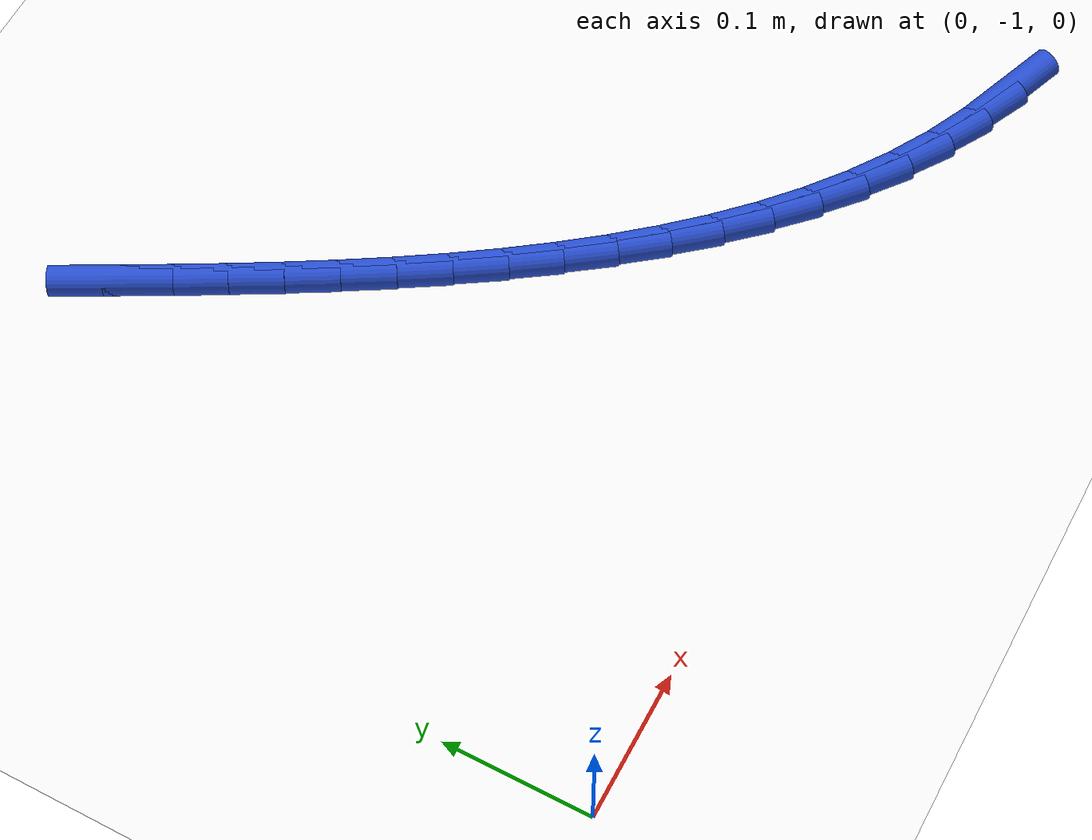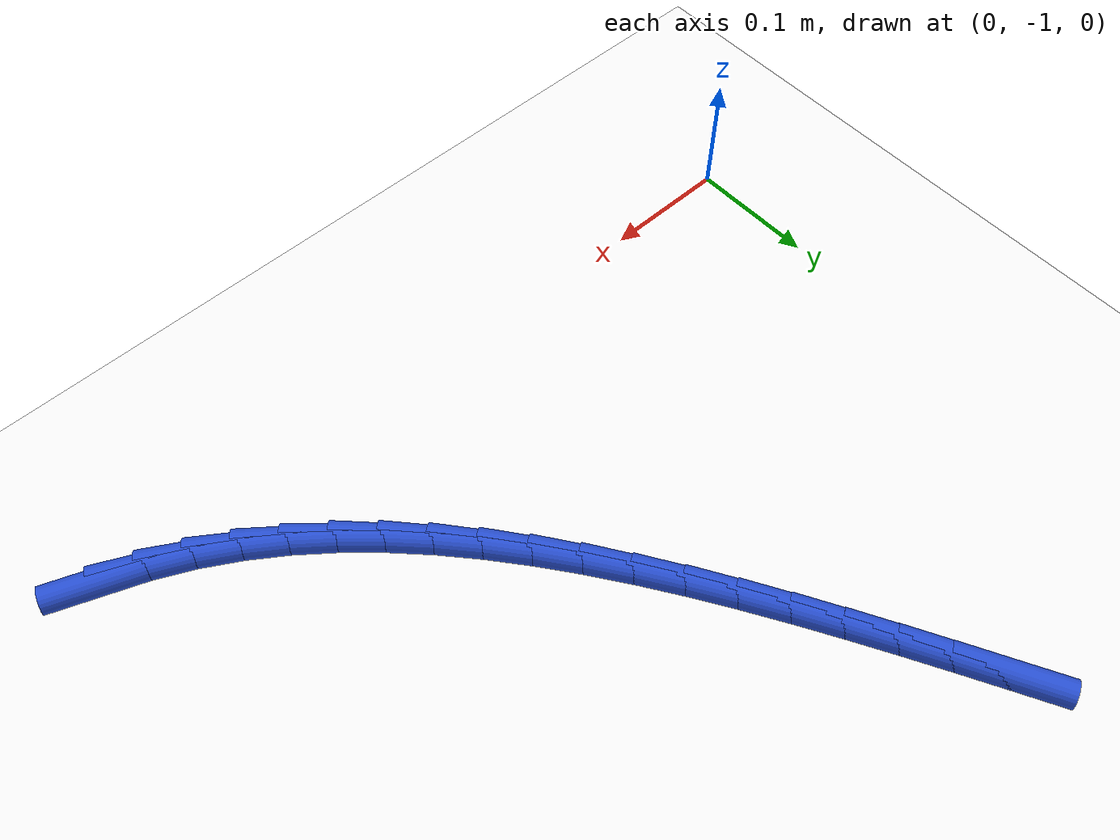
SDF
<sdf version="1.6">
 <world name="default">
  <model name="ground_plane">
   <static>1</static>
   <link name="link">
    <collision name="collision">
     <geometry><plane><normal>0 0 1</normal><size>100 100</size></plane></geometry>
     <surface><friction><ode><mu>100</mu><mu2>50</mu2></ode></friction></surface>
    </collision>
    <visual name="visual">
     <cast_shadows>0</cast_shadows>
     <geometry><plane><normal>0 0 1</normal><size>100 100</size></plane></geometry>
     <material>
      <script><uri>file://media/materials/scripts/gazebo.material</uri><name>Gazebo/WhiteGlow</name></script>
     </material>
    </visual>
   </link>
  </model>
  <model name="line">
   <link name="link_184">
    <pose>0.5693409244738493 -1.010287465968349 0.01 0 1.57 -0.36818998447042045</pose>
    <collision name="collision">
     <geometry><cylinder><radius>0.01</radius><length>0.08</length></cylinder></geometry>
    </collision>
    <visual name="visual">
     <material>
      <script><name>Gazebo/Blue</name><uri>file://media/materials/scripts/gazebo.material</uri></script>
     </material>
     <geometry><cylinder><radius>0.01</radius><length>0.08</length></cylinder></geometry>
    </visual>
   </link>
   <link name="link_185">
    <pose>0.539573678133154 -0.998803788916294 0.01 0 1.57 -0.4521419477609348</pose>
    <collision name="collision">
     <geometry><cylinder><radius>0.01</radius><length>0.08</length></cylinder></geometry>
    </collision>
    <visual name="visual">
     <material>
      <script><name>Gazebo/Blue</name><uri>file://media/materials/scripts/gazebo.material</uri></script>
     </material>
     <geometry><cylinder><radius>0.01</radius><length>0.08</length></cylinder></geometry>
    </visual>
   </link>
   <link name="link_186">
    <pose>0.5109879439334316 -0.9849197103812226 0.01 0 1.57 -0.5310793571287914</pose>
    <collision name="collision">
     <geometry><cylinder><radius>0.01</radius><length>0.08</length></cylinder></geometry>
    </collision>
    <visual name="visual">
     <material>
      <script><name>Gazebo/Blue</name><uri>file://media/materials/scripts/gazebo.material</uri></script>
     </material>
     <geometry><cylinder><radius>0.01</radius><length>0.08</length></cylinder></geometry>
    </visual>
   </link>
   <link name="link_187">
    <pose>0.48353162524478943 -0.9687927520599927 0.01 0 1.57 -0.6042604568738387</pose>
    <collision name="collision">
     <geometry><cylinder><radius>0.01</radius><length>0.08</length></cylinder></geometry>
    </collision>
    <visual name="visual">
     <material>
      <script><name>Gazebo/Blue</name><uri>file://media/materials/scripts/gazebo.material</uri></script>
     </material>
     <geometry><cylinder><radius>0.01</radius><length>0.08</length></cylinder></geometry>
    </visual>
   </link>
   <link name="link_188">
    <pose>0.4571526254373317 -0.9505804356494603 0.01 0 1.57 -0.6712954924127393</pose>
    <collision name="collision">
     <geometry><cylinder><radius>0.01</radius><length>0.08</length></cylinder></geometry>
    </collision>
    <visual name="visual">
     <material>
      <script><name>Gazebo/Blue</name><uri>file://media/materials/scripts/gazebo.material</uri></script>
     </material>
     <geometry><cylinder><radius>0.01</radius><length>0.08</length></cylinder></geometry>
    </visual>
   </link>
   <link name="link_189">
    <pose>0.4317988478811644 -0.9304402828464825 0.01 0 1.57 -0.7320867756161786</pose>
    <collision name="collision">
     <geometry><cylinder><radius>0.01</radius><length>0.08</length></cylinder></geometry>
    </collision>
    <visual name="visual">
     <material>
      <script><name>Gazebo/Blue</name><uri>file://media/materials/scripts/gazebo.material</uri></script>
     </material>
     <geometry><cylinder><radius>0.01</radius><length>0.08</length></cylinder></geometry>
    </visual>
   </link>
   <link name="link_190">
    <pose>0.40741819594639217 -0.9085298153479155 0.01 0 1.57 -0.7867526463591232</pose>
    <collision name="collision">
     <geometry><cylinder><radius>0.01</radius><length>0.08</length></cylinder></geometry>
    </collision>
    <visual name="visual">
     <material>
      <script><name>Gazebo/Blue</name><uri>file://media/materials/scripts/gazebo.material</uri></script>
     </material>
     <geometry><cylinder><radius>0.01</radius><length>0.08</length></cylinder></geometry>
    </visual>
   </link>
   <link name="link_191">
    <pose>0.38395857300312186 -0.8850065548506176 0.01 0 1.57 -0.8355532538327217</pose>
    <collision name="collision">
     <geometry><cylinder><radius>0.01</radius><length>0.08</length></cylinder></geometry>
    </collision>
    <visual name="visual">
     <material>
      <script><name>Gazebo/Blue</name><uri>file://media/materials/scripts/gazebo.material</uri></script>
     </material>
     <geometry><cylinder><radius>0.01</radius><length>0.08</length></cylinder></geometry>
    </visual>
   </link>
   <link name="link_192">
    <pose>0.3613678824214581 -0.8600280230514443 0.01 0 1.57 -0.8788280368900504</pose>
    <collision name="collision">
     <geometry><cylinder><radius>0.01</radius><length>0.08</length></cylinder></geometry>
    </collision>
    <visual name="visual">
     <material>
      <script><name>Gazebo/Blue</name><uri>file://media/materials/scripts/gazebo.material</uri></script>
     </material>
     <geometry><cylinder><radius>0.01</radius><length>0.08</length></cylinder></geometry>
    </visual>
   </link>
   <link name="link_193">
    <pose>0.33959402757150664 -0.8337517416472533 0.01 0 1.57 -0.9169481436805927</pose>
    <collision name="collision">
     <geometry><cylinder><radius>0.01</radius><length>0.08</length></cylinder></geometry>
    </collision>
    <visual name="visual">
     <material>
      <script><name>Gazebo/Blue</name><uri>file://media/materials/scripts/gazebo.material</uri></script>
     </material>
     <geometry><cylinder><radius>0.01</radius><length>0.08</length></cylinder></geometry>
    </visual>
   </link>
   <link name="link_194">
    <pose>0.3185849118233729 -0.8063352323349005 0.01 0 1.57 -0.9502829666348307</pose>
    <collision name="collision">
     <geometry><cylinder><radius>0.01</radius><length>0.08</length></cylinder></geometry>
    </collision>
    <visual name="visual">
     <material>
      <script><name>Gazebo/Blue</name><uri>file://media/materials/scripts/gazebo.material</uri></script>
     </material>
     <geometry><cylinder><radius>0.01</radius><length>0.08</length></cylinder></geometry>
    </visual>
   </link>
   <link name="link_195">
    <pose>0.2982884385471619 -0.7779360168112426 0.01 0 1.57 -0.9791781414793637</pose>
    <collision name="collision">
     <geometry><cylinder><radius>0.01</radius><length>0.08</length></cylinder></geometry>
    </collision>
    <visual name="visual">
     <material>
      <script><name>Gazebo/Blue</name><uri>file://media/materials/scripts/gazebo.material</uri></script>
     </material>
     <geometry><cylinder><radius>0.01</radius><length>0.08</length></cylinder></geometry>
    </visual>
   </link>
   <link name="link_196">
    <pose>0.27865251111298 -0.7487116167731372 0.01 0 1.57 -1.0039419581421312</pose>
    <collision name="collision">
     <geometry><cylinder><radius>0.01</radius><length>0.08</length></cylinder></geometry>
    </collision>
    <visual name="visual">
     <material>
      <script><name>Gazebo/Blue</name><uri>file://media/materials/scripts/gazebo.material</uri></script>
     </material>
     <geometry><cylinder><radius>0.01</radius><length>0.08</length></cylinder></geometry>
    </visual>
   </link>
   <link name="link_197">
    <pose>0.25962503289093236 -0.7188195539174412 0.01 0 1.57 -1.0248374370649012</pose>
    <collision name="collision">
     <geometry><cylinder><radius>0.01</radius><length>0.08</length></cylinder></geometry>
    </collision>
    <visual name="visual">
     <material>
      <script><name>Gazebo/Blue</name><uri>file://media/materials/scripts/gazebo.material</uri></script>
     </material>
     <geometry><cylinder><radius>0.01</radius><length>0.08</length></cylinder></geometry>
    </visual>
   </link>
   <link name="link_198">
    <pose>0.24115390725112432 -0.6884173499410111 0.01 0 1.57 -1.0420778693157458</pose>
    <collision name="collision">
     <geometry><cylinder><radius>0.01</radius><length>0.08</length></cylinder></geometry>
    </collision>
    <visual name="visual">
     <material>
      <script><name>Gazebo/Blue</name><uri>file://media/materials/scripts/gazebo.material</uri></script>
     </material>
     <geometry><cylinder><radius>0.01</radius><length>0.08</length></cylinder></geometry>
    </visual>
   </link>
   <link name="link_199">
    <pose>0.22318703756366104 -0.6576625265407028 0.01 0 1.57 -1.055824158852091</pose>
    <collision name="collision">
     <geometry><cylinder><radius>0.01</radius><length>0.08</length></cylinder></geometry>
    </collision>
    <visual name="visual">
     <material>
      <script><name>Gazebo/Blue</name><uri>file://media/materials/scripts/gazebo.material</uri></script>
     </material>
     <geometry><cylinder><radius>0.01</radius><length>0.08</length></cylinder></geometry>
    </visual>
   </link>
   <link name="link_200">
    <pose>0.2056723271986489 -0.6267126054133746 0.01 0 1.57 -1.0661827400891835</pose>
    <collision name="collision">
     <geometry><cylinder><radius>0.01</radius><length>0.08</length></cylinder></geometry>
    </collision>
    <visual name="visual">
     <material>
      <script><name>Gazebo/Blue</name><uri>file://media/materials/scripts/gazebo.material</uri></script>
     </material>
     <geometry><cylinder><radius>0.01</radius><length>0.08</length></cylinder></geometry>
    </visual>
   </link>
   <link name="link_201">
    <pose>0.18855767952619287 -0.5957251082558829 0.01 0 1.57 -1.0732031492409164</pose>
    <collision name="collision">
     <geometry><cylinder><radius>0.01</radius><length>0.08</length></cylinder></geometry>
    </collision>
    <visual name="visual">
     <material>
      <script><name>Gazebo/Blue</name><uri>file://media/materials/scripts/gazebo.material</uri></script>
     </material>
     <geometry><cylinder><radius>0.01</radius><length>0.08</length></cylinder></geometry>
    </visual>
   </link>
   <link name="link_202">
    <pose>0.17179099791639849 -0.564857556765084 0.01 0 1.57 -1.0768869561064465</pose>
    <collision name="collision">
     <geometry><cylinder><radius>0.01</radius><length>0.08</length></cylinder></geometry>
    </collision>
    <visual name="visual">
     <material>
      <script><name>Gazebo/Blue</name><uri>file://media/materials/scripts/gazebo.material</uri></script>
     </material>
     <geometry><cylinder><radius>0.01</radius><length>0.08</length></cylinder></geometry>
    </visual>
   </link>
  </model>
 </world>
</sdf>
